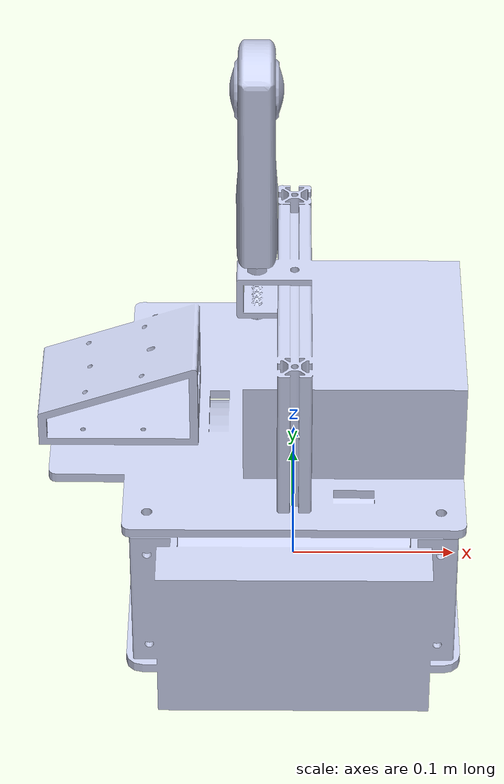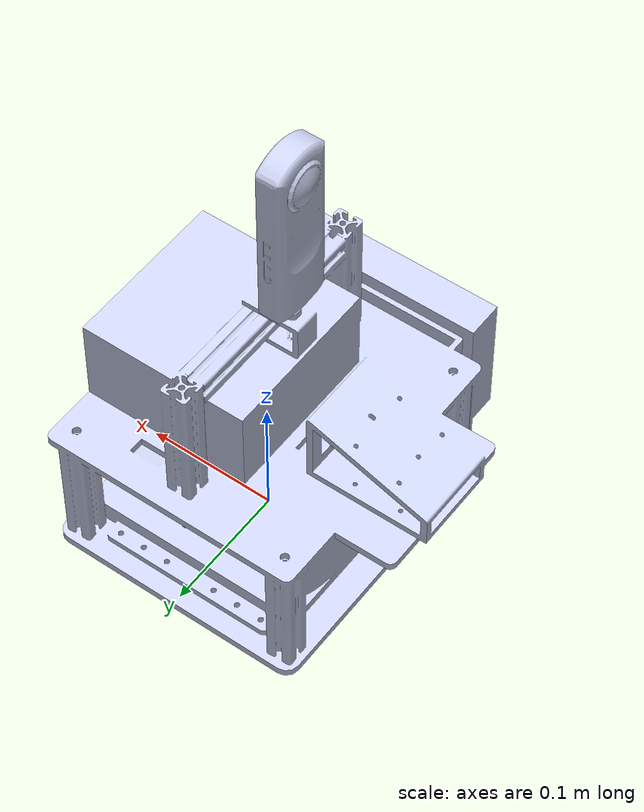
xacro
<?xml version="1.0"?>
<robot name="back_platform" xmlns:xacro="http://www.ros.org/wiki/xacro">

  <!-- ===== Arguments ===== -->
  <xacro:arg name="mesh_directory" default="package://tbai_ros_description/back_platform/meshes"/>

  <xacro:arg name="base_frame"   default="rail_plate"/>
  <xacro:arg name="camera_frame" default="camera_link"/>
  <xacro:arg name="lidar_frame"  default="lidar_link"/>

  <xacro:arg name="use_camera"   default="true"/>
  <xacro:arg name="use_lidar"    default="false"/>

  <xacro:arg name="camera_xyz"   default="-0.022 0 0.34261"/>
  <xacro:arg name="camera_rpy"   default="0 0 0"/>
  <xacro:arg name="lidar_xyz"    default="-0.022 0 0.34261"/>
  <xacro:arg name="lidar_rpy"    default="0 0 0"/>

  <!-- Colors (visual only) -->
  <xacro:property name="body_rgba"  value="0.792156862745098 0.819607843137255 0.933333333333333 1"/>
  <xacro:property name="lidar_rgba" value="0.752941176470588 0.752941176470588 0.752941176470588 1"/>

  <!-- ===== Base link ===== -->
  <link name="rail_plate">
    <inertial>
      <origin xyz="0.00635250945240217 1.13458578397634e-06 0.0871174348643237" rpy="0 0 0"/>
      <mass value="3.25808083608894"/>
      <inertia
        ixx="0.00692550734039648" ixy="-1.33166622387711e-12" ixz="-1.17448587841972e-05"
        iyy="0.00748683155664127" iyz="-1.07167205682874e-08"
        izz="0.0128115370066176"/>
    </inertial>
    <visual>
      <origin xyz="0 0 0" rpy="0 0 0"/>
      <geometry>
        <mesh filename="$(arg mesh_directory)/base_link.STL"/>
      </geometry>
      <material name="body_mat">
        <color rgba="${body_rgba}"/>
      </material>
    </visual>
    <collision>
      <origin xyz="0 0 0" rpy="0 0 0"/>
      <geometry>
        <mesh filename="$(arg mesh_directory)/base_link.STL"/>
      </geometry>
    </collision>
  </link>

  <!-- ===== Camera (optional) ===== -->
  <xacro:if value="$(arg use_camera)">
    <link name="$(arg camera_frame)">
      <inertial>
        <origin xyz="-1.1195613161194e-07 -1.26868574311553e-05 -0.041268053741871" rpy="0 0 0"/>
        <mass value="0.1358671710581"/>
        <inertia
          ixx="0.000186506702465536" ixy="4.80971346739502e-10" ixz="-2.86507431910387e-10"
          iyy="0.00016828774014945" iyz="-1.11354563750735e-08"
          izz="2.95132685389021e-05"/>
      </inertial>
      <visual>
        <origin xyz="0 0 0" rpy="0 0 0"/>
        <geometry>
          <mesh filename="$(arg mesh_directory)/camera_link.STL"/>
        </geometry>
        <material name="body_mat">
          <color rgba="${body_rgba}"/>
        </material>
      </visual>
      <collision>
        <origin xyz="0 0 0" rpy="0 0 0"/>
        <geometry>
          <mesh filename="$(arg mesh_directory)/camera_link.STL"/>
        </geometry>
      </collision>
    </link>

    <joint name="platform2camera" type="fixed">
      <origin xyz="$(arg camera_xyz)" rpy="$(arg camera_rpy)"/>
      <parent link="$(arg base_frame)"/>
      <child  link="$(arg camera_frame)"/>
      <axis xyz="0 0 0"/>
    </joint>
  </xacro:if>

  <!-- ===== LiDAR (optional) ===== -->
  <xacro:if value="$(arg use_lidar)">
    <link name="$(arg lidar_frame)">
      <inertial>
        <origin xyz="-0.0925413033857373 0.000199571080035991 -0.170576837922296" rpy="0 0 0"/>
        <mass value="0.141887448474832"/>
        <inertia
          ixx="4.78524766184578e-05" ixy="1.0962370569689e-07" ixz="-7.62461165868898e-06"
          iyy="4.17978820621662e-05" iyz="-2.85023367727814e-07"
          izz="6.60245326449438e-05"/>
      </inertial>
      <visual>
        <origin xyz="0 0 0" rpy="0 0 0"/>
        <geometry>
          <mesh filename="$(arg mesh_directory)/lidar_link.STL"/>
        </geometry>
        <material name="lidar_mat">
          <color rgba="${lidar_rgba}"/>
        </material>
      </visual>
      <collision>
        <origin xyz="0 0 0" rpy="0 0 0"/>
        <geometry>
          <mesh filename="$(arg mesh_directory)/lidar_link.STL"/>
        </geometry>
      </collision>
    </link>

    <joint name="platform2lidar" type="fixed">
      <origin xyz="$(arg lidar_xyz)" rpy="$(arg lidar_rpy)"/>
      <parent link="$(arg base_frame)"/>
      <child  link="$(arg lidar_frame)"/>
      <axis xyz="0 0 0"/>
    </joint>
  </xacro:if>

</robot>
